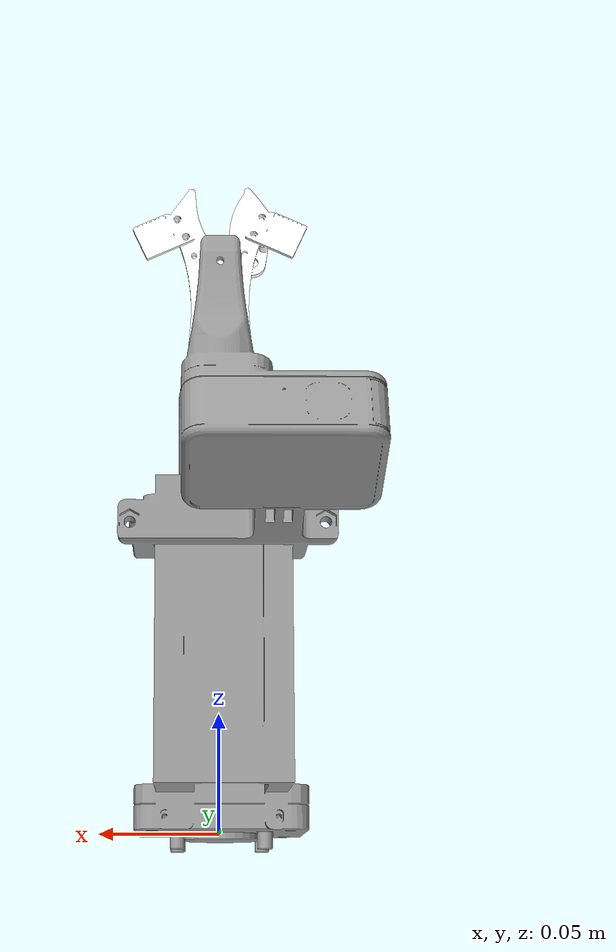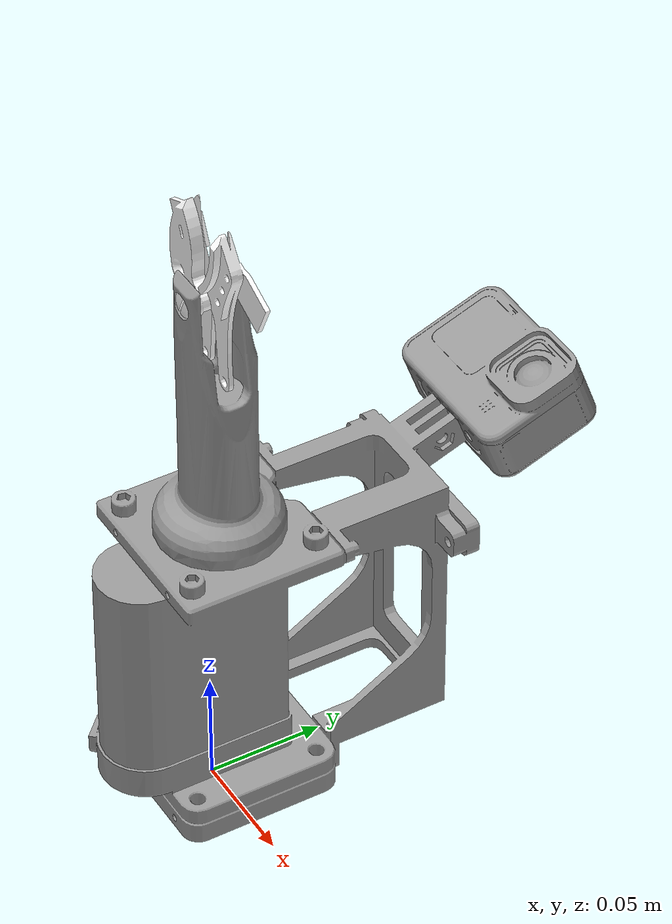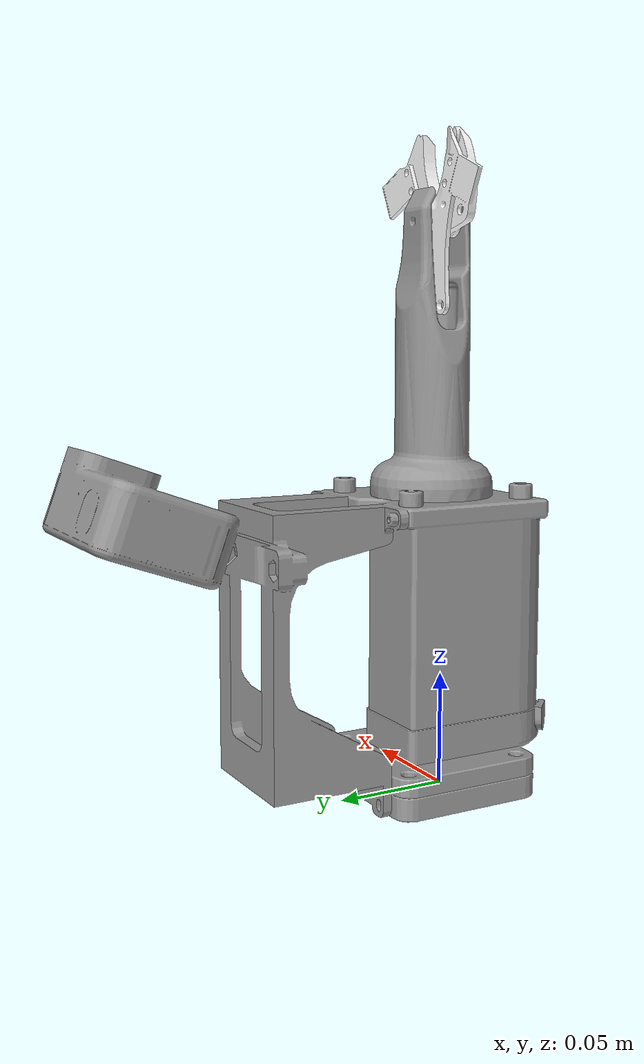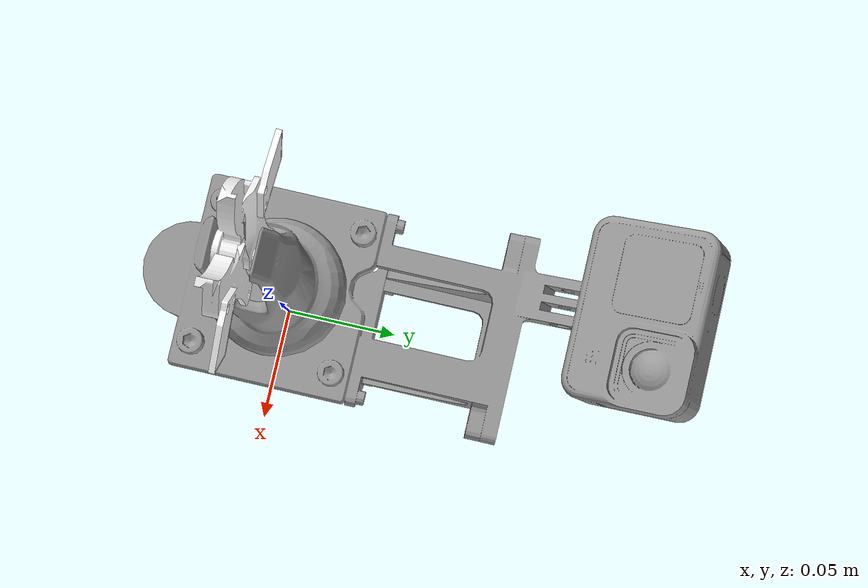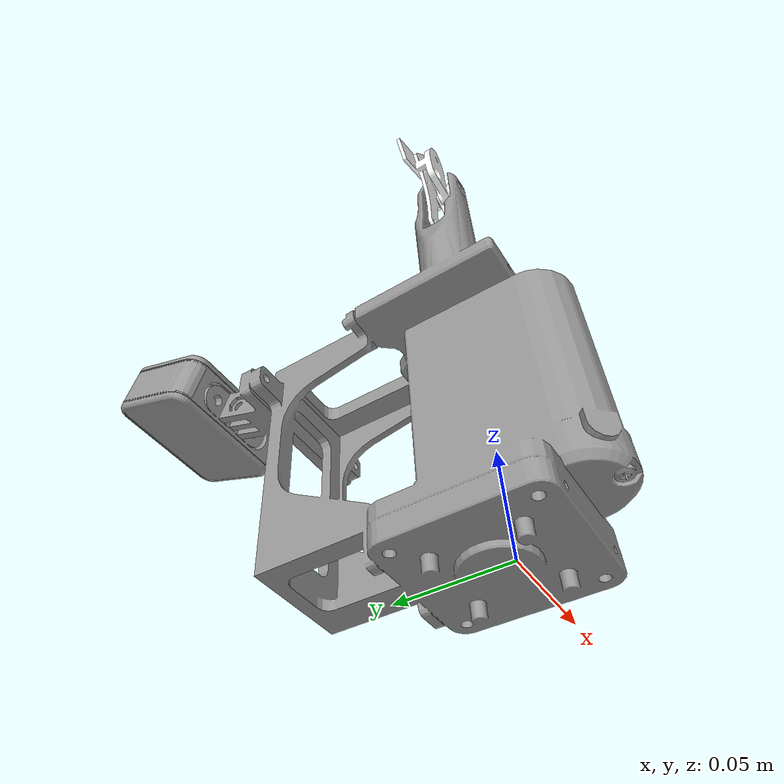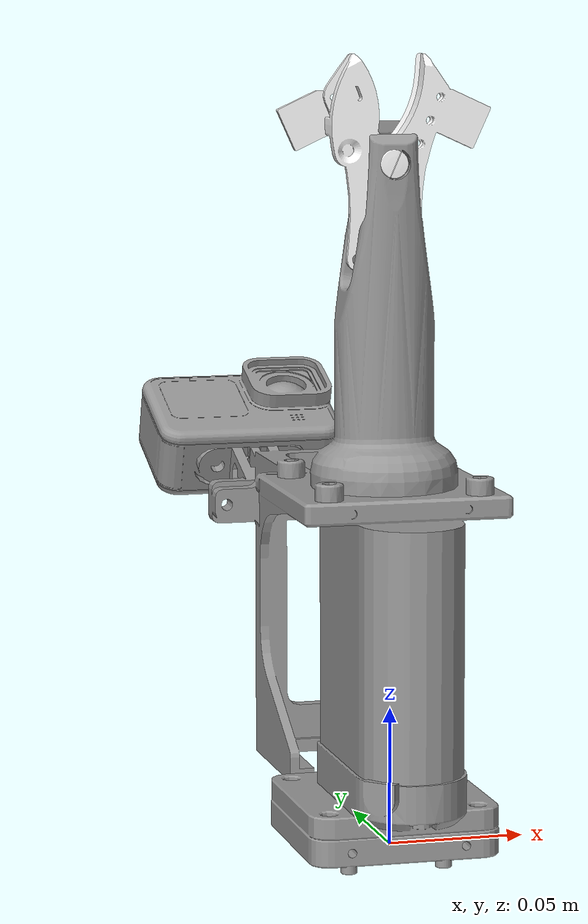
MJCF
<mujoco model="umi_scissors">
    <compiler angle="radian"/>

    <option impratio="10" timestep="0.002"/>

    <asset>
        <mesh name="scissors_base" file="meshes/umi_base.STL" scale="1 1 1"/>
        <mesh name="scissors_left" file="meshes/umi_left_finger.STL" scale="1 1 1"/>
        <mesh name="scissors_right" file="meshes/umi_right_finger.STL" scale="1 1 1"/>
    </asset>

    <worldbody>
        <!-- 夹爪基座 -->
        <body name="umi_scissors_base" pos="-0.057 -0.05 0 ">
            <inertial mass="2.0" pos="0 0 5" diaginertia="0.01 0.01 0.01"/>
            <geom name="base_visual" type="mesh" mesh="scissors_base" rgba="0.6 0.6 0.6 1"
                  contype="0" conaffinity="0" group="1"/>

            <!-- 碰撞几何体：用简单形状近似剪刀外形 -->
            <body name="collision_holder" pos="0 -0.017 0.282" euler="0 1.57 0">
                <geom name="scissors_col_1" type="box" size="0.0668 0.0353 0.0378" pos="0.2155 0.0731 0.0567"
                      contype="1" conaffinity="1" rgba="1 0 0 0" group="1"/>
                <geom name="scissors_col_2" type="box" size="0.0617 0.0277 0.0277" pos="0.2129 0.1386 0.0567"
                      contype="1" conaffinity="1" rgba="1 0 0 0" group="1"/>
                <geom name="scissors_col_3" type="capsule" size="0.0227" fromto="0.2520 0.0378 0.0567 0.1764 0.0378 0.0567"
                      contype="1" conaffinity="1" rgba="1 0 0 0" group="1"/>
                <geom name="scissors_col_4" type="capsule" size="0.0176" fromto="0.1512 0.0731 0.0567 0.0378 0.0731 0.0567"
                      contype="1" conaffinity="1" rgba="1 0 0 0" group="1"/>
                <geom name="scissors_col_7" type="box" size="0.0151 0.0252 0.0378" pos="0.1537 0.2142 0.0365" euler="0 0 0.31"
                      contype="1" conaffinity="1" rgba="1 0 0 0" group="1"/>
                <geom name="scissors_col_8" type="box" size="0.0063 0.0088 0.0441" pos="0.1726 0.1638 0.0567"
                      contype="1" conaffinity="1" rgba="1 0 0 0" group="1"/>

                <!-- 腕部相机 -->
                <camera name="wrist_cam" pos="0.1512 0.189 0.0567" quat="0.701 -0.092 0.701 0.092" fovy="60"/>
            </body>

            <!-- 末端执行器标记点 -->
            <site name="pinch" pos="0.058 0.052 0.28" size="0.001" rgba="1 0 0 0" type="sphere"/>

            <!-- 铰链可视化标记点 -->
            <site name="hinge_point" pos="0.057 0.052 0.246" size="0.001" rgba="0 1 0 1" type="sphere"/>

            <!-- 左剪刀片 -->
            <body name="left_finger" pos="0.0495 0.048 0" gravcomp="1">
                <inertial mass="0.2" pos="0 0 0.1" diaginertia="0.001 0.001 0.001"/>
                <joint name="left_driver_joint" type="hinge" axis="0 1 0"
                       pos="0.0075 0.004 0.246" range="-0.3 0.3" damping="100" armature="0.01"/>
                <geom name="left_visual" type="mesh" mesh="scissors_left" rgba="1 1 1 1"
                      contype="0" conaffinity="0" group="1"/>
                <!-- 左刀片碰撞体 -->
                <geom name="scissors_col_5" type="box" size="0.0101 0.0038 0.0126" pos="0.0311 0.0081 0.2592" euler="0 2.094 0"
                      contype="1" conaffinity="1" rgba="0 1 0 0" group="1"/>
            </body>

            <!-- 右剪刀片 -->
            <body name="right_finger" pos="0.013 0.042 0" gravcomp="1">
                <inertial mass="0.2" pos="0 0 0.1" diaginertia="0.001 0.001 0.001"/>
                <joint name="right_driver_joint" type="hinge" axis="0 1 0"
                       pos="0.044 0.01 0.246" range="-0.3 0.3" damping="100" armature="0.01"/>
                <geom name="right_visual" type="mesh" mesh="scissors_right" rgba="1 1 1 1"
                      contype="0" conaffinity="0" group="1"/>
                <!-- 右刀片碰撞体 -->
                <geom name="scissors_col_6" type="box" size="0.0101 0.0038 0.0126" pos="0.0198 0.0141 0.2592" euler="0 1.046 0"
                      contype="1" conaffinity="1" rgba="0 1 0 0" group="1"/>
            </body>
        </body>
    </worldbody>

    <actuator>
        <position name="left_actuator" joint="left_driver_joint"
                  kp="100" ctrlrange="-0.3 0.3" forcerange="-100 100"/>
        <position name="right_actuator" joint="right_driver_joint"
                  kp="100" ctrlrange="-0.3 0.3" forcerange="-100 100"/>
    </actuator>

    <contact>
        <exclude body1="umi_scissors_base" body2="left_finger"/>
        <exclude body1="umi_scissors_base" body2="right_finger"/>
        <exclude body1="left_finger" body2="right_finger"/>
    </contact>
</mujoco>
